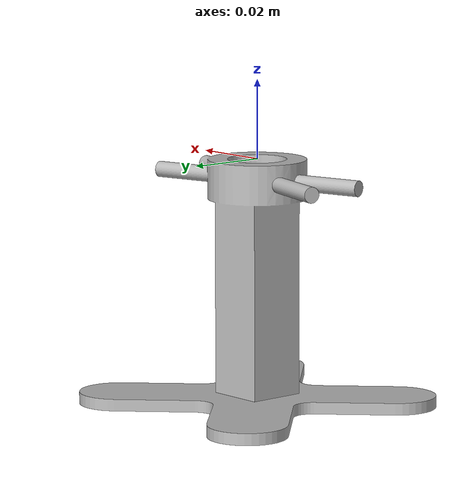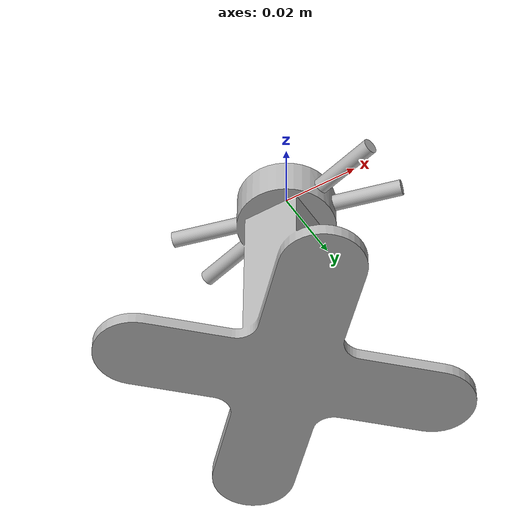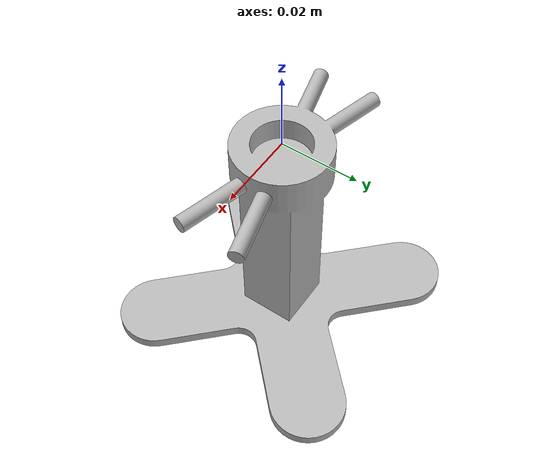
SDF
<?xml version="1.0" ?>
<sdf version="1.6">
  <model name="vg_4">
    <allow_auto_disable>true</allow_auto_disable>
    <link name="base_link">
      <inertial auto="true"/>

      <visual name="visual">
        <pose>0 0 -0.06 3.14 0 -1.57</pose>
        <geometry>
          <mesh>
            <uri>model://vacuum_tools/meshes/vg_4_visual.gltf</uri>
          </mesh>
        </geometry>
      </visual>

      <collision name="collision">
        <density>2700</density>
        <geometry>
          <mesh>
            <uri>model://vacuum_tools/meshes/vg_4_collision.stl</uri>
          </mesh>
        </geometry>
      </collision>

    </link>

    <link name="contact_link">
      <inertial auto="true"/>
      <pose> 0 0 -0.00505 0 0 0</pose>
      <collision name="collision">
        <density>1</density>
        <geometry>
          <cylinder>
            <radius>0.007</radius>
            <length>0.0001</length>
          </cylinder>
        </geometry>
      </collision>
    </link>

    <joint name="contact_joint" type="prismatic">
      <parent>base_link</parent>
      <child>contact_link</child>
      <axis>
        <xyz>0 0 1</xyz>
        <limit>
          <lower>-0.002</lower>
          <upper>0.0</upper>
          <effort>10</effort>
        </limit>
      </axis>
    </joint>

    <link name="suction_1_link">
      <inertial auto="true"/>
      <pose> 0.025 0.025 -0.066 0 0 0 </pose>
      <collision name="collision">
        <density>1</density>
        <geometry>
          <cylinder>
            <radius>0.0085</radius>
            <length>0.002</length>
          </cylinder>
        </geometry>
      </collision>
      <sensor name='contact_sensor' type='contact'>
        <update_rate>500</update_rate>
        <contact>
          <collision>collision</collision>
        </contact>
        <plugin
          filename="libContactPlugin.so"
          name="ariac_plugins::ContactPlugin">
          <search_term>vg_4</search_term>
          <update_rate>500</update_rate>
        </plugin>
      </sensor>
    </link>

    <link name="suction_2_link">
      <inertial auto="true"/>
      <pose> -0.025 0.025 -0.066 0 0 0 </pose>
      <collision name="collision">
        <density>1</density>
        <geometry>
          <cylinder>
            <radius>0.0085</radius>
            <length>0.002</length>
          </cylinder>
        </geometry>
      </collision>
      <sensor name='contact_sensor' type='contact'>
        <update_rate>500</update_rate>
        <contact>
          <collision>collision</collision>
        </contact>
        <plugin
          filename="libContactPlugin.so"
          name="ariac_plugins::ContactPlugin">
          <search_term>vg_4</search_term>
          <update_rate>500</update_rate>
        </plugin>
      </sensor>
    </link>

    <link name="suction_3_link">
      <inertial auto="true"/>
      <pose> 0.025 -0.025 -0.066 0 0 0 </pose>
      <collision name="collision">
        <density>1</density>
        <geometry>
          <cylinder>
            <radius>0.0085</radius>
            <length>0.002</length>
          </cylinder>
        </geometry>
      </collision>
      <sensor name='contact_sensor' type='contact'>
        <update_rate>500</update_rate>
        <contact>
          <collision>collision</collision>
        </contact>
        <plugin
          filename="libContactPlugin.so"
          name="ariac_plugins::ContactPlugin">
          <search_term>vg_4</search_term>
          <update_rate>500</update_rate>
        </plugin>
      </sensor>
    </link>

    <link name="suction_4_link">
      <inertial auto="true"/>
      <pose> -0.025 -0.025 -0.066 0 0 0 </pose>
      <collision name="collision">
        <density>1</density>
        <geometry>
          <cylinder>
            <radius>0.0085</radius>
            <length>0.002</length>
          </cylinder>
        </geometry>
      </collision>
      <sensor name='contact_sensor' type='contact'>
        <update_rate>500</update_rate>
        <contact>
          <collision>collision</collision>
        </contact>
        <plugin
          filename="libContactPlugin.so"
          name="ariac_plugins::ContactPlugin">
          <search_term>vg_4</search_term>
          <update_rate>500</update_rate>
        </plugin>
      </sensor>
    </link>

    <joint name="suction_1_joint" type="prismatic">
      <parent>base_link</parent>
      <child>suction_1_link</child>
      <axis>
        <xyz>0 0 1</xyz>
        <limit>
          <lower>0</lower>
          <upper>0.004</upper>
          <effort>10</effort>
        </limit>
      </axis>
    </joint>

    <joint name="suction_2_joint" type="prismatic">
      <parent>base_link</parent>
      <child>suction_2_link</child>
      <axis>
        <xyz>0 0 1</xyz>
        <limit>
          <lower>0</lower>
          <upper>0.004</upper>
          <effort>10</effort>
        </limit>
      </axis>
    </joint>

    <joint name="suction_3_joint" type="prismatic">
      <parent>base_link</parent>
      <child>suction_3_link</child>
      <axis>
        <xyz>0 0 1</xyz>
        <limit>
          <lower>0</lower>
          <upper>0.004</upper>
          <effort>10</effort>
        </limit>
      </axis>
    </joint>

    <joint name="suction_4_joint" type="prismatic">
      <parent>base_link</parent>
      <child>suction_4_link</child>
      <axis>
        <xyz>0 0 1</xyz>
        <limit>
          <lower>0</lower>
          <upper>0.004</upper>
          <effort>10</effort>
        </limit>
      </axis>
    </joint>

    <plugin
      filename="libVacuumToolPlugin.so"
      name="ariac_plugins::VacuumToolPlugin">
      <ros>
        <namespace>/vacuum_tool/vg_4</namespace>
      </ros>
      <tool_type>2</tool_type>
    </plugin>
  </model>
</sdf>
